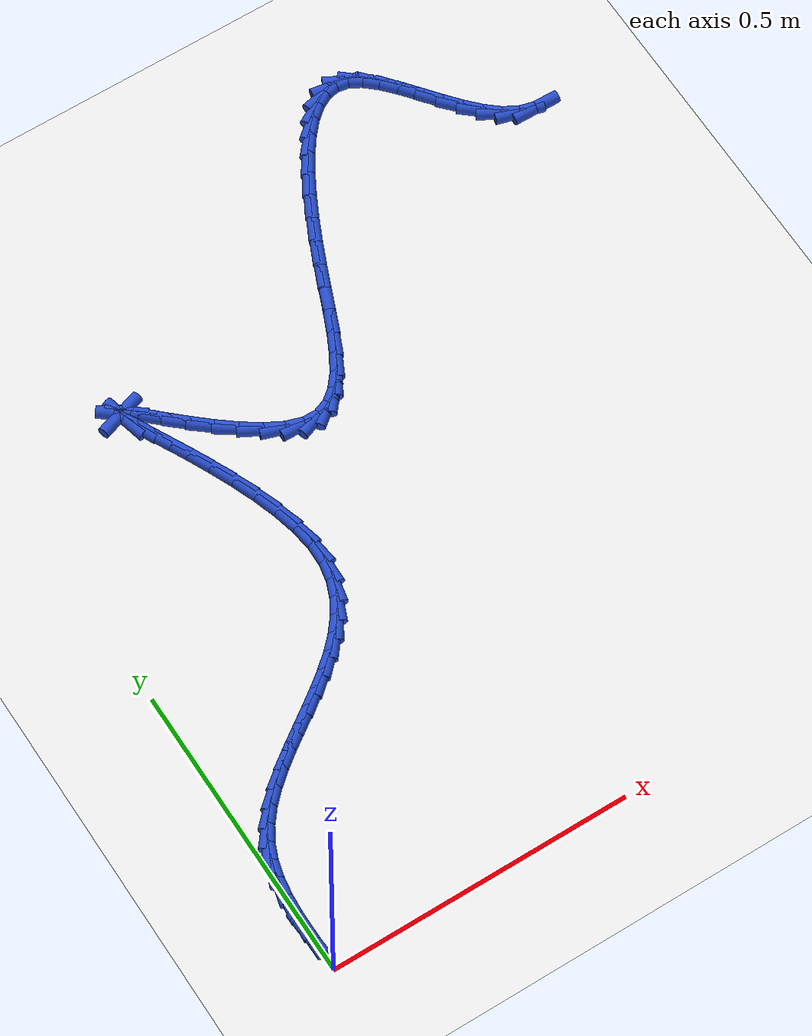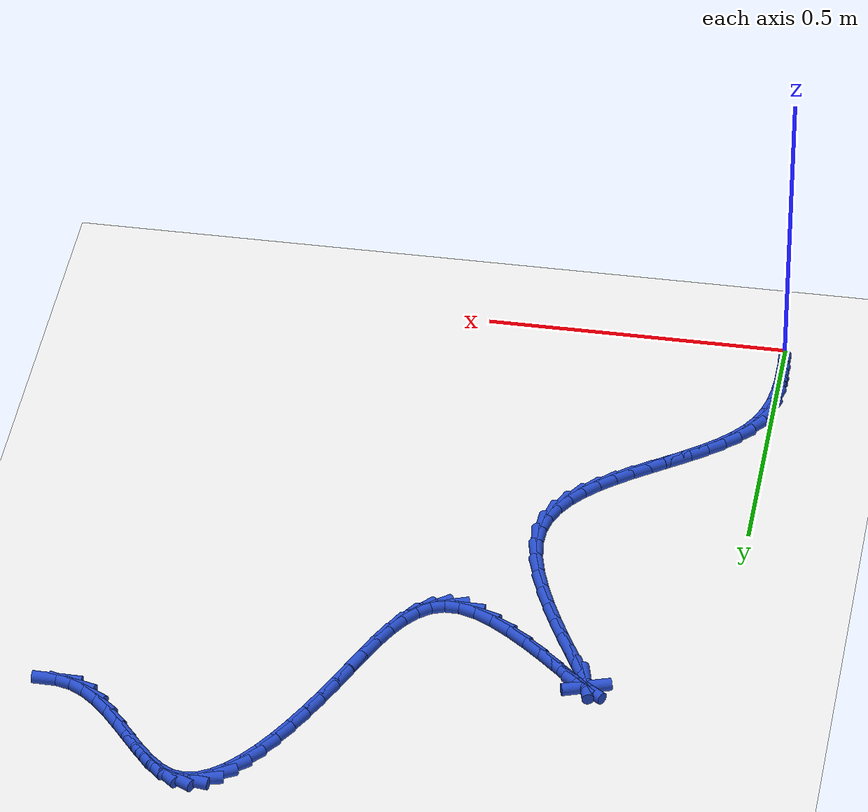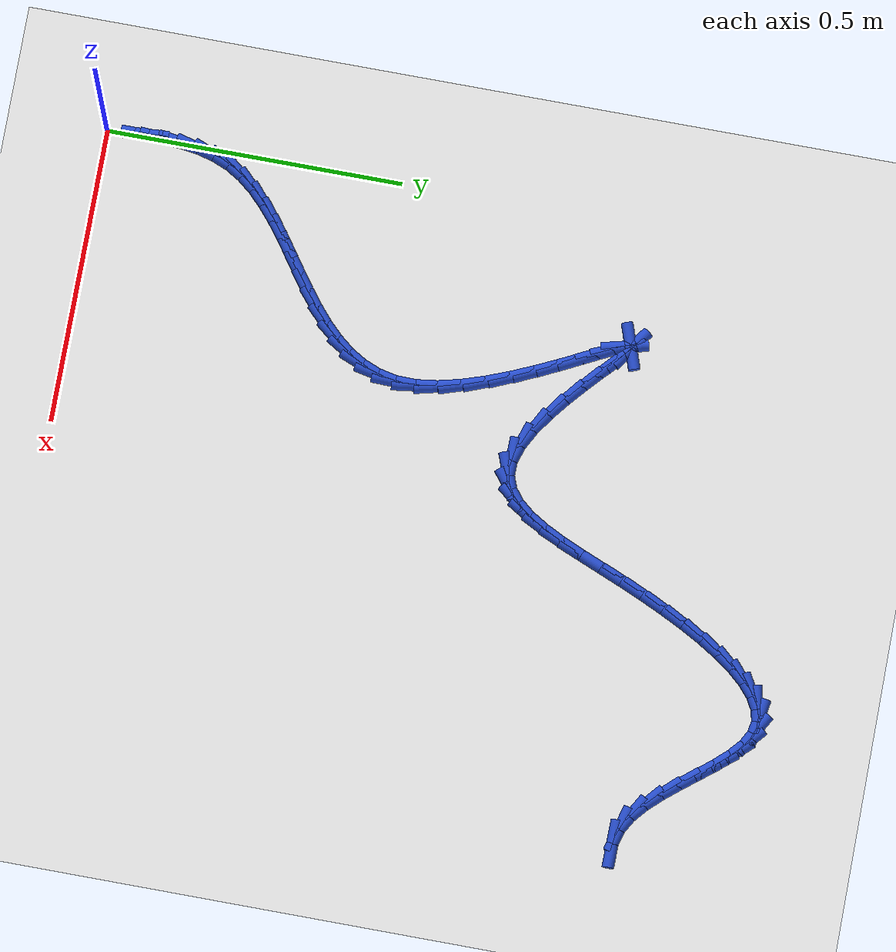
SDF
<sdf version="1.6">
 <world name="default">
  <model name="ground_plane">
   <static>1</static>
   <link name="link">
    <collision name="collision">
     <geometry><plane><normal>0 0 1</normal><size>100 100</size></plane></geometry>
     <surface><friction><ode><mu>100</mu><mu2>50</mu2></ode></friction></surface>
    </collision>
    <visual name="visual">
     <cast_shadows>0</cast_shadows>
     <geometry><plane><normal>0 0 1</normal><size>100 100</size></plane></geometry>
     <material>
      <script><uri>file://media/materials/scripts/gazebo.material</uri><name>Gazebo/WhiteGlow</name></script>
     </material>
    </visual>
   </link>
  </model>
  <model name="line">
   <link name="link_2">
    <pose>-0.0027959164126874657 0.06351579644415624 0.01 0 1.57 1.5668645503999694</pose>
    <collision name="collision">
     <geometry><cylinder><radius>0.01</radius><length>0.08</length></cylinder></geometry>
    </collision>
    <visual name="visual">
     <material>
      <script><name>Gazebo/Blue</name><uri>file://media/materials/scripts/gazebo.material</uri></script>
     </material>
     <geometry><cylinder><radius>0.01</radius><length>0.08</length></cylinder></geometry>
    </visual>
   </link>
   <link name="link_3">
    <pose>-0.0026716082320646997 0.09513192299397714 0.01 0 1.57 1.5087119891368779</pose>
    <collision name="collision">
     <geometry><cylinder><radius>0.01</radius><length>0.08</length></cylinder></geometry>
    </collision>
    <visual name="visual">
     <material>
      <script><name>Gazebo/Blue</name><uri>file://media/materials/scripts/gazebo.material</uri></script>
     </material>
     <geometry><cylinder><radius>0.01</radius><length>0.08</length></cylinder></geometry>
    </visual>
   </link>
   <link name="link_4">
    <pose>-0.0007434329826080588 0.12614936352640913 0.01 0 1.57 1.4278460036132272</pose>
    <collision name="collision">
     <geometry><cylinder><radius>0.01</radius><length>0.08</length></cylinder></geometry>
    </collision>
    <visual name="visual">
     <material>
      <script><name>Gazebo/Blue</name><uri>file://media/materials/scripts/gazebo.material</uri></script>
     </material>
     <geometry><cylinder><radius>0.01</radius><length>0.08</length></cylinder></geometry>
    </visual>
   </link>
   <link name="link_5">
    <pose>0.003580376443824612 0.1561899893645388 0.01 0 1.57 1.3212364394583436</pose>
    <collision name="collision">
     <geometry><cylinder><radius>0.01</radius><length>0.08</length></cylinder></geometry>
    </collision>
    <visual name="visual">
     <material>
      <script><name>Gazebo/Blue</name><uri>file://media/materials/scripts/gazebo.material</uri></script>
     </material>
     <geometry><cylinder><radius>0.01</radius><length>0.08</length></cylinder></geometry>
    </visual>
   </link>
   <link name="link_6">
    <pose>0.010891587155375467 0.18487567183145304 0.01 0 1.57 1.1867978124770695</pose>
    <collision name="collision">
     <geometry><cylinder><radius>0.01</radius><length>0.08</length></cylinder></geometry>
    </collision>
    <visual name="visual">
     <material>
      <script><name>Gazebo/Blue</name><uri>file://media/materials/scripts/gazebo.material</uri></script>
     </material>
     <geometry><cylinder><radius>0.01</radius><length>0.08</length></cylinder></geometry>
    </visual>
   </link>
   <link name="link_7">
    <pose>0.021781966260186664 0.21182828225023886 0.01 0 1.57 1.031378172145254</pose>
    <collision name="collision">
     <geometry><cylinder><radius>0.01</radius><length>0.08</length></cylinder></geometry>
    </collision>
    <visual name="visual">
     <material>
      <script><name>Gazebo/Blue</name><uri>file://media/materials/scripts/gazebo.material</uri></script>
     </material>
     <geometry><cylinder><radius>0.01</radius><length>0.08</length></cylinder></geometry>
    </visual>
   </link>
   <link name="link_8">
    <pose>0.03670214508740581 0.23675178229962057 0.01 0 1.57 0.8927171543347373</pose>
    <collision name="collision">
     <geometry><cylinder><radius>0.01</radius><length>0.08</length></cylinder></geometry>
    </collision>
    <visual name="visual">
     <material>
      <script><name>Gazebo/Blue</name><uri>file://media/materials/scripts/gazebo.material</uri></script>
     </material>
     <geometry><cylinder><radius>0.01</radius><length>0.08</length></cylinder></geometry>
    </visual>
   </link>
   <link name="link_9">
    <pose>0.055287042813328746 0.25982458529066454 0.01 0 1.57 0.784898827575356</pose>
    <collision name="collision">
     <geometry><cylinder><radius>0.01</radius><length>0.08</length></cylinder></geometry>
    </collision>
    <visual name="visual">
     <material>
      <script><name>Gazebo/Blue</name><uri>file://media/materials/scripts/gazebo.material</uri></script>
     </material>
     <geometry><cylinder><radius>0.01</radius><length>0.08</length></cylinder></geometry>
    </visual>
   </link>
   <link name="link_10">
    <pose>0.07687918365320512 0.28139517343199005 0.01 0 1.57 0.7061109310032161</pose>
    <collision name="collision">
     <geometry><cylinder><radius>0.01</radius><length>0.08</length></cylinder></geometry>
    </collision>
    <visual name="visual">
     <material>
      <script><name>Gazebo/Blue</name><uri>file://media/materials/scripts/gazebo.material</uri></script>
     </material>
     <geometry><cylinder><radius>0.01</radius><length>0.08</length></cylinder></geometry>
    </visual>
   </link>
   <link name="link_11">
    <pose>0.10082071693396542 0.301812246982634 0.01 0 1.57 0.6531049567065565</pose>
    <collision name="collision">
     <geometry><cylinder><radius>0.01</radius><length>0.08</length></cylinder></geometry>
    </collision>
    <visual name="visual">
     <material>
      <script><name>Gazebo/Blue</name><uri>file://media/materials/scripts/gazebo.material</uri></script>
     </material>
     <geometry><cylinder><radius>0.01</radius><length>0.08</length></cylinder></geometry>
    </visual>
   </link>
   <link name="link_12">
    <pose>0.1264537919825401 0.3214245062016331 0.01 0 1.57 0.6229373550466749</pose>
    <collision name="collision">
     <geometry><cylinder><radius>0.01</radius><length>0.08</length></cylinder></geometry>
    </collision>
    <visual name="visual">
     <material>
      <script><name>Gazebo/Blue</name><uri>file://media/materials/scripts/gazebo.material</uri></script>
     </material>
     <geometry><cylinder><radius>0.01</radius><length>0.08</length></cylinder></geometry>
    </visual>
   </link>
   <link name="link_13">
    <pose>0.1531205581258596 0.34058065134802373 0.01 0 1.57 0.613670889038933</pose>
    <collision name="collision">
     <geometry><cylinder><radius>0.01</radius><length>0.08</length></cylinder></geometry>
    </collision>
    <visual name="visual">
     <material>
      <script><name>Gazebo/Blue</name><uri>file://media/materials/scripts/gazebo.material</uri></script>
     </material>
     <geometry><cylinder><radius>0.01</radius><length>0.08</length></cylinder></geometry>
    </visual>
   </link>
   <link name="link_14">
    <pose>0.1801631646908543 0.35962938268084266 0.01 0 1.57 0.6245738218739101</pose>
    <collision name="collision">
     <geometry><cylinder><radius>0.01</radius><length>0.08</length></cylinder></geometry>
    </collision>
    <visual name="visual">
     <material>
      <script><name>Gazebo/Blue</name><uri>file://media/materials/scripts/gazebo.material</uri></script>
     </material>
     <geometry><cylinder><radius>0.01</radius><length>0.08</length></cylinder></geometry>
    </visual>
   </link>
   <link name="link_15">
    <pose>0.20692376100445467 0.37891940045912637 0.01 0 1.57 0.6561310193265922</pose>
    <collision name="collision">
     <geometry><cylinder><radius>0.01</radius><length>0.08</length></cylinder></geometry>
    </collision>
    <visual name="visual">
     <material>
      <script><name>Gazebo/Blue</name><uri>file://media/materials/scripts/gazebo.material</uri></script>
     </material>
     <geometry><cylinder><radius>0.01</radius><length>0.08</length></cylinder></geometry>
    </visual>
   </link>
   <link name="link_16">
    <pose>0.23274449639359127 0.3987994049419118 0.01 0 1.57 0.7099598297764018</pose>
    <collision name="collision">
     <geometry><cylinder><radius>0.01</radius><length>0.08</length></cylinder></geometry>
    </collision>
    <visual name="visual">
     <material>
      <script><name>Gazebo/Blue</name><uri>file://media/materials/scripts/gazebo.material</uri></script>
     </material>
     <geometry><cylinder><radius>0.01</radius><length>0.08</length></cylinder></geometry>
    </visual>
   </link>
   <link name="link_17">
    <pose>0.25696752018519436 0.4196180963882353 0.01 0 1.57 0.788543286077477</pose>
    <collision name="collision">
     <geometry><cylinder><radius>0.01</radius><length>0.08</length></cylinder></geometry>
    </collision>
    <visual name="visual">
     <material>
      <script><name>Gazebo/Blue</name><uri>file://media/materials/scripts/gazebo.material</uri></script>
     </material>
     <geometry><cylinder><radius>0.01</radius><length>0.08</length></cylinder></geometry>
    </visual>
   </link>
   <link name="link_18">
    <pose>0.27893498170619446 0.44172417505713363 0.01 0 1.57 0.8945082515153614</pose>
    <collision name="collision">
     <geometry><cylinder><radius>0.01</radius><length>0.08</length></cylinder></geometry>
    </collision>
    <visual name="visual">
     <material>
      <script><name>Gazebo/Blue</name><uri>file://media/materials/scripts/gazebo.material</uri></script>
     </material>
     <geometry><cylinder><radius>0.01</radius><length>0.08</length></cylinder></geometry>
    </visual>
   </link>
   <link name="link_19">
    <pose>0.297989030283522 0.46546634120764335 0.01 0 1.57 1.029045670293951</pose>
    <collision name="collision">
     <geometry><cylinder><radius>0.01</radius><length>0.08</length></cylinder></geometry>
    </collision>
    <visual name="visual">
     <material>
      <script><name>Gazebo/Blue</name><uri>file://media/materials/scripts/gazebo.material</uri></script>
     </material>
     <geometry><cylinder><radius>0.01</radius><length>0.08</length></cylinder></geometry>
    </visual>
   </link>
   <link name="link_20">
    <pose>0.3134718152441075 0.49119329509880116 0.01 0 1.57 1.189384170315574</pose>
    <collision name="collision">
     <geometry><cylinder><radius>0.01</radius><length>0.08</length></cylinder></geometry>
    </collision>
    <visual name="visual">
     <material>
      <script><name>Gazebo/Blue</name><uri>file://media/materials/scripts/gazebo.material</uri></script>
     </material>
     <geometry><cylinder><radius>0.01</radius><length>0.08</length></cylinder></geometry>
    </visual>
   </link>
   <link name="link_21">
    <pose>0.3247254859148814 0.5192537369896437 0.01 0 1.57 1.3665861587407233</pose>
    <collision name="collision">
     <geometry><cylinder><radius>0.01</radius><length>0.08</length></cylinder></geometry>
    </collision>
    <visual name="visual">
     <material>
      <script><name>Gazebo/Blue</name><uri>file://media/materials/scripts/gazebo.material</uri></script>
     </material>
     <geometry><cylinder><radius>0.01</radius><length>0.08</length></cylinder></geometry>
    </visual>
   </link>
   <link name="link_22">
    <pose>0.3310921916227739 0.5499963671392075 0.01 0 1.57 1.5462722711945407</pose>
    <collision name="collision">
     <geometry><cylinder><radius>0.01</radius><length>0.08</length></cylinder></geometry>
    </collision>
    <visual name="visual">
     <material>
      <script><name>Gazebo/Blue</name><uri>file://media/materials/scripts/gazebo.material</uri></script>
     </material>
     <geometry><cylinder><radius>0.01</radius><length>0.08</length></cylinder></geometry>
    </visual>
   </link>
   <link name="link_23">
    <pose>0.3319204962589454 0.5837647856849958 0.01 0 1.57 -1.4412416503928223</pose>
    <collision name="collision">
     <geometry><cylinder><radius>0.01</radius><length>0.08</length></cylinder></geometry>
    </collision>
    <visual name="visual">
     <material>
      <script><name>Gazebo/Blue</name><uri>file://media/materials/scripts/gazebo.material</uri></script>
     </material>
     <geometry><cylinder><radius>0.01</radius><length>0.08</length></cylinder></geometry>
    </visual>
   </link>
   <link name="link_24">
    <pose>0.3271424619114956 0.6204386623068459 0.01 0 1.57 -1.3318536267235894</pose>
    <collision name="collision">
     <geometry><cylinder><radius>0.01</radius><length>0.08</length></cylinder></geometry>
    </collision>
    <visual name="visual">
     <material>
      <script><name>Gazebo/Blue</name><uri>file://media/materials/scripts/gazebo.material</uri></script>
     </material>
     <geometry><cylinder><radius>0.01</radius><length>0.08</length></cylinder></geometry>
    </visual>
   </link>
   <link name="link_25">
    <pose>0.31773221903037974 0.6590691341294445 0.01 0 1.57 -1.2541452055621358</pose>
    <collision name="collision">
     <geometry><cylinder><radius>0.01</radius><length>0.08</length></cylinder></geometry>
    </collision>
    <visual name="visual">
     <material>
      <script><name>Gazebo/Blue</name><uri>file://media/materials/scripts/gazebo.material</uri></script>
     </material>
     <geometry><cylinder><radius>0.01</radius><length>0.08</length></cylinder></geometry>
    </visual>
   </link>
   <link name="link_26">
    <pose>0.30477181142227305 0.6986215380243946 0.01 0 1.57 -1.1979050699701133</pose>
    <collision name="collision">
     <geometry><cylinder><radius>0.01</radius><length>0.08</length></cylinder></geometry>
    </collision>
    <visual name="visual">
     <material>
      <script><name>Gazebo/Blue</name><uri>file://media/materials/scripts/gazebo.material</uri></script>
     </material>
     <geometry><cylinder><radius>0.01</radius><length>0.08</length></cylinder></geometry>
    </visual>
   </link>
   <link name="link_27">
    <pose>0.28934328289385025 0.7380612108633 0.01 0 1.57 -1.1570335195105463</pose>
    <collision name="collision">
     <geometry><cylinder><radius>0.01</radius><length>0.08</length></cylinder></geometry>
    </collision>
    <visual name="visual">
     <material>
      <script><name>Gazebo/Blue</name><uri>file://media/materials/scripts/gazebo.material</uri></script>
     </material>
     <geometry><cylinder><radius>0.01</radius><length>0.08</length></cylinder></geometry>
    </visual>
   </link>
   <link name="link_28">
    <pose>0.27252867725178637 0.776353489517764 0.01 0 1.57 -1.1281100830862631</pose>
    <collision name="collision">
     <geometry><cylinder><radius>0.01</radius><length>0.08</length></cylinder></geometry>
    </collision>
    <visual name="visual">
     <material>
      <script><name>Gazebo/Blue</name><uri>file://media/materials/scripts/gazebo.material</uri></script>
     </material>
     <geometry><cylinder><radius>0.01</radius><length>0.08</length></cylinder></geometry>
    </visual>
   </link>
   <link name="link_29">
    <pose>0.25541003830275666 0.8124637108593896 0.01 0 1.57 -1.1097330311195828</pose>
    <collision name="collision">
     <geometry><cylinder><radius>0.01</radius><length>0.08</length></cylinder></geometry>
    </collision>
    <visual name="visual">
     <material>
      <script><name>Gazebo/Blue</name><uri>file://media/materials/scripts/gazebo.material</uri></script>
     </material>
     <geometry><cylinder><radius>0.01</radius><length>0.08</length></cylinder></geometry>
    </visual>
   </link>
   <link name="link_30">
    <pose>0.2390694098534361 0.8453572117597803 0.01 0 1.57 -1.102703240145169</pose>
    <collision name="collision">
     <geometry><cylinder><radius>0.01</radius><length>0.08</length></cylinder></geometry>
    </collision>
    <visual name="visual">
     <material>
      <script><name>Gazebo/Blue</name><uri>file://media/materials/scripts/gazebo.material</uri></script>
     </material>
     <geometry><cylinder><radius>0.01</radius><length>0.08</length></cylinder></geometry>
    </visual>
   </link>
   <link name="link_31">
    <pose>0.2245888357104996 0.8739993290905391 0.01 0 1.57 -1.1119403655011126</pose>
    <collision name="collision">
     <geometry><cylinder><radius>0.01</radius><length>0.08</length></cylinder></geometry>
    </collision>
    <visual name="visual">
     <material>
      <script><name>Gazebo/Blue</name><uri>file://media/materials/scripts/gazebo.material</uri></script>
     </material>
     <geometry><cylinder><radius>0.01</radius><length>0.08</length></cylinder></geometry>
    </visual>
   </link>
   <link name="link_32">
    <pose>0.2130503596806222 0.89735539972327 0.01 0 1.57 -1.1553664526700589</pose>
    <collision name="collision">
     <geometry><cylinder><radius>0.01</radius><length>0.08</length></cylinder></geometry>
    </collision>
    <visual name="visual">
     <material>
      <script><name>Gazebo/Blue</name><uri>file://media/materials/scripts/gazebo.material</uri></script>
     </material>
     <geometry><cylinder><radius>0.01</radius><length>0.08</length></cylinder></geometry>
    </visual>
   </link>
   <link name="link_33">
    <pose>0.2055360255704789 0.914390760529576 0.01 0 1.57 -1.3269700216863092</pose>
    <collision name="collision">
     <geometry><cylinder><radius>0.01</radius><length>0.08</length></cylinder></geometry>
    </collision>
    <visual name="visual">
     <material>
      <script><name>Gazebo/Blue</name><uri>file://media/materials/scripts/gazebo.material</uri></script>
     </material>
     <geometry><cylinder><radius>0.01</radius><length>0.08</length></cylinder></geometry>
    </visual>
   </link>
   <link name="link_34">
    <pose>0.20312787718674483 0.9240707483810602 0.01 0 1.57 0.32885833397499126</pose>
    <collision name="collision">
     <geometry><cylinder><radius>0.01</radius><length>0.08</length></cylinder></geometry>
    </collision>
    <visual name="visual">
     <material>
      <script><name>Gazebo/Blue</name><uri>file://media/materials/scripts/gazebo.material</uri></script>
     </material>
     <geometry><cylinder><radius>0.01</radius><length>0.08</length></cylinder></geometry>
    </visual>
   </link>
   <link name="link_35">
    <pose>0.20690795833609488 0.9253607001493258 0.01 0 1.57 -0.6199399838525371</pose>
    <collision name="collision">
     <geometry><cylinder><radius>0.01</radius><length>0.08</length></cylinder></geometry>
    </collision>
    <visual name="visual">
     <material>
      <script><name>Gazebo/Blue</name><uri>file://media/materials/scripts/gazebo.material</uri></script>
     </material>
     <geometry><cylinder><radius>0.01</radius><length>0.08</length></cylinder></geometry>
    </visual>
   </link>
   <link name="link_36">
    <pose>0.21759446600557827 0.917732474276856 0.01 0 1.57 -0.7283895927231969</pose>
    <collision name="collision">
     <geometry><cylinder><radius>0.01</radius><length>0.08</length></cylinder></geometry>
    </collision>
    <visual name="visual">
     <material>
      <script><name>Gazebo/Blue</name><uri>file://media/materials/scripts/gazebo.material</uri></script>
     </material>
     <geometry><cylinder><radius>0.01</radius><length>0.08</length></cylinder></geometry>
    </visual>
   </link>
   <link name="link_37">
    <pose>0.23442467154054775 0.9027195681759547 0.01 0 1.57 -0.7499691526827266</pose>
    <collision name="collision">
     <geometry><cylinder><radius>0.01</radius><length>0.08</length></cylinder></geometry>
    </collision>
    <visual name="visual">
     <material>
      <script><name>Gazebo/Blue</name><uri>file://media/materials/scripts/gazebo.material</uri></script>
     </material>
     <geometry><cylinder><radius>0.01</radius><length>0.08</length></cylinder></geometry>
    </visual>
   </link>
   <link name="link_38">
    <pose>0.25625911865028056 0.8823799325830343 0.01 0 1.57 -0.7430200246903909</pose>
    <collision name="collision">
     <geometry><cylinder><radius>0.01</radius><length>0.08</length></cylinder></geometry>
    </collision>
    <visual name="visual">
     <material>
      <script><name>Gazebo/Blue</name><uri>file://media/materials/scripts/gazebo.material</uri></script>
     </material>
     <geometry><cylinder><radius>0.01</radius><length>0.08</length></cylinder></geometry>
    </visual>
   </link>
   <link name="link_39">
    <pose>0.2819583509718768 0.8587715183349862 0.01 0 1.57 -0.7177879676649651</pose>
    <collision name="collision">
     <geometry><cylinder><radius>0.01</radius><length>0.08</length></cylinder></geometry>
    </collision>
    <visual name="visual">
     <material>
      <script><name>Gazebo/Blue</name><uri>file://media/materials/scripts/gazebo.material</uri></script>
     </material>
     <geometry><cylinder><radius>0.01</radius><length>0.08</length></cylinder></geometry>
    </visual>
   </link>
   <link name="link_40">
    <pose>0.31038291214243646 0.8339522762687029 0.01 0 1.57 -0.6740044256709823</pose>
    <collision name="collision">
     <geometry><cylinder><radius>0.01</radius><length>0.08</length></cylinder></geometry>
    </collision>
    <visual name="visual">
     <material>
      <script><name>Gazebo/Blue</name><uri>file://media/materials/scripts/gazebo.material</uri></script>
     </material>
     <geometry><cylinder><radius>0.01</radius><length>0.08</length></cylinder></geometry>
    </visual>
   </link>
   <link name="link_41">
    <pose>0.3403933457990593 0.8099801572210763 0.01 0 1.57 -0.6051346839254056</pose>
    <collision name="collision">
     <geometry><cylinder><radius>0.01</radius><length>0.08</length></cylinder></geometry>
    </collision>
    <visual name="visual">
     <material>
      <script><name>Gazebo/Blue</name><uri>file://media/materials/scripts/gazebo.material</uri></script>
     </material>
     <geometry><cylinder><radius>0.01</radius><length>0.08</length></cylinder></geometry>
    </visual>
   </link>
   <link name="link_42">
    <pose>0.3708501955788452 0.7889131120289982 0.01 0 1.57 -0.49595394357340283</pose>
    <collision name="collision">
     <geometry><cylinder><radius>0.01</radius><length>0.08</length></cylinder></geometry>
    </collision>
    <visual name="visual">
     <material>
      <script><name>Gazebo/Blue</name><uri>file://media/materials/scripts/gazebo.material</uri></script>
     </material>
     <geometry><cylinder><radius>0.01</radius><length>0.08</length></cylinder></geometry>
    </visual>
   </link>
   <link name="link_43">
    <pose>0.40061400511889383 0.7728090915293606 0.01 0 1.57 -0.3144057232918719</pose>
    <collision name="collision">
     <geometry><cylinder><radius>0.01</radius><length>0.08</length></cylinder></geometry>
    </collision>
    <visual name="visual">
     <material>
      <script><name>Gazebo/Blue</name><uri>file://media/materials/scripts/gazebo.material</uri></script>
     </material>
     <geometry><cylinder><radius>0.01</radius><length>0.08</length></cylinder></geometry>
    </visual>
   </link>
   <link name="link_44">
    <pose>0.4285453180563058 0.7637260465590554 0.01 0 1.57 -0.011703591210170897</pose>
    <collision name="collision">
     <geometry><cylinder><radius>0.01</radius><length>0.08</length></cylinder></geometry>
    </collision>
    <visual name="visual">
     <material>
      <script><name>Gazebo/Blue</name><uri>file://media/materials/scripts/gazebo.material</uri></script>
     </material>
     <geometry><cylinder><radius>0.01</radius><length>0.08</length></cylinder></geometry>
    </visual>
   </link>
   <link name="link_45">
    <pose>0.45365351735670106 0.7634321770407985 0.01 0 1.57 0.35485432812626344</pose>
    <collision name="collision">
     <geometry><cylinder><radius>0.01</radius><length>0.08</length></cylinder></geometry>
    </collision>
    <visual name="visual">
     <material>
      <script><name>Gazebo/Blue</name><uri>file://media/materials/scripts/gazebo.material</uri></script>
     </material>
     <geometry><cylinder><radius>0.01</radius><length>0.08</length></cylinder></geometry>
    </visual>
   </link>
   <link name="link_46">
    <pose>0.4759720614419376 0.7717020780982234 0.01 0 1.57 0.6678376235612845</pose>
    <collision name="collision">
     <geometry><cylinder><radius>0.01</radius><length>0.08</length></cylinder></geometry>
    </collision>
    <visual name="visual">
     <material>
      <script><name>Gazebo/Blue</name><uri>file://media/materials/scripts/gazebo.material</uri></script>
     </material>
     <geometry><cylinder><radius>0.01</radius><length>0.08</length></cylinder></geometry>
    </visual>
   </link>
   <link name="link_47">
    <pose>0.4959652842543108 0.7874715438661151 0.01 0 1.57 0.8859163377391943</pose>
    <collision name="collision">
     <geometry><cylinder><radius>0.01</radius><length>0.08</length></cylinder></geometry>
    </collision>
    <visual name="visual">
     <material>
      <script><name>Gazebo/Blue</name><uri>file://media/materials/scripts/gazebo.material</uri></script>
     </material>
     <geometry><cylinder><radius>0.01</radius><length>0.08</length></cylinder></geometry>
    </visual>
   </link>
   <link name="link_48">
    <pose>0.5140990174254307 0.8096734528731955 0.01 0 1.57 1.025066322846191</pose>
    <collision name="collision">
     <geometry><cylinder><radius>0.01</radius><length>0.08</length></cylinder></geometry>
    </collision>
    <visual name="visual">
     <material>
      <script><name>Gazebo/Blue</name><uri>file://media/materials/scripts/gazebo.material</uri></script>
     </material>
     <geometry><cylinder><radius>0.01</radius><length>0.08</length></cylinder></geometry>
    </visual>
   </link>
   <link name="link_49">
    <pose>0.530839092586908 0.8372406836481885 0.01 0 1.57 1.1101776761175524</pose>
    <collision name="collision">
     <geometry><cylinder><radius>0.01</radius><length>0.08</length></cylinder></geometry>
    </collision>
    <visual name="visual">
     <material>
      <script><name>Gazebo/Blue</name><uri>file://media/materials/scripts/gazebo.material</uri></script>
     </material>
     <geometry><cylinder><radius>0.01</radius><length>0.08</length></cylinder></geometry>
    </visual>
   </link>
   <link name="link_50">
    <pose>0.5466513413703532 0.8691061147198168 0.01 0 1.57 1.1584927687857978</pose>
    <collision name="collision">
     <geometry><cylinder><radius>0.01</radius><length>0.08</length></cylinder></geometry>
    </collision>
    <visual name="visual">
     <material>
      <script><name>Gazebo/Blue</name><uri>file://media/materials/scripts/gazebo.material</uri></script>
     </material>
     <geometry><cylinder><radius>0.01</radius><length>0.08</length></cylinder></geometry>
    </visual>
   </link>
   <link name="link_51">
    <pose>0.5620015954073766 0.9042026246168028 0.01 0 1.57 1.1799243712703809</pose>
    <collision name="collision">
     <geometry><cylinder><radius>0.01</radius><length>0.08</length></cylinder></geometry>
    </collision>
    <visual name="visual">
     <material>
      <script><name>Gazebo/Blue</name><uri>file://media/materials/scripts/gazebo.material</uri></script>
     </material>
     <geometry><cylinder><radius>0.01</radius><length>0.08</length></cylinder></geometry>
    </visual>
   </link>
   <link name="link_52">
    <pose>0.5773556863295888 0.9414630918678701 0.01 0 1.57 1.179538955681841</pose>
    <collision name="collision">
     <geometry><cylinder><radius>0.01</radius><length>0.08</length></cylinder></geometry>
    </collision>
    <visual name="visual">
     <material>
      <script><name>Gazebo/Blue</name><uri>file://media/materials/scripts/gazebo.material</uri></script>
     </material>
     <geometry><cylinder><radius>0.01</radius><length>0.08</length></cylinder></geometry>
    </visual>
   </link>
   <link name="link_53">
    <pose>0.5931791229010174 0.9798205668883077 0.01 0 1.57 1.1629228723960348</pose>
    <collision name="collision">
     <geometry><cylinder><radius>0.01</radius><length>0.08</length></cylinder></geometry>
    </collision>
    <visual name="visual">
     <material>
      <script><name>Gazebo/Blue</name><uri>file://media/materials/scripts/gazebo.material</uri></script>
     </material>
     <geometry><cylinder><radius>0.01</radius><length>0.08</length></cylinder></geometry>
    </visual>
   </link>
   <link name="link_54">
    <pose>0.6097985280993995 1.0182820393864562 0.01 0 1.57 1.1392877880767849</pose>
    <collision name="collision">
     <geometry><cylinder><radius>0.01</radius><length>0.08</length></cylinder></geometry>
    </collision>
    <visual name="visual">
     <material>
      <script><name>Gazebo/Blue</name><uri>file://media/materials/scripts/gazebo.material</uri></script>
     </material>
     <geometry><cylinder><radius>0.01</radius><length>0.08</length></cylinder></geometry>
    </visual>
   </link>
   <link name="link_55">
    <pose>0.6271856801082225 1.0560434094979347 0.01 0 1.57 1.108751322990685</pose>
    <collision name="collision">
     <geometry><cylinder><radius>0.01</radius><length>0.08</length></cylinder></geometry>
    </collision>
    <visual name="visual">
     <material>
      <script><name>Gazebo/Blue</name><uri>file://media/materials/scripts/gazebo.material</uri></script>
     </material>
     <geometry><cylinder><radius>0.01</radius><length>0.08</length></cylinder></geometry>
    </visual>
   </link>
   <link name="link_56">
    <pose>0.6452564989403701 1.0923303148409047 0.01 0 1.57 1.0690937379425778</pose>
    <collision name="collision">
     <geometry><cylinder><radius>0.01</radius><length>0.08</length></cylinder></geometry>
    </collision>
    <visual name="visual">
     <material>
      <script><name>Gazebo/Blue</name><uri>file://media/materials/scripts/gazebo.material</uri></script>
     </material>
     <geometry><cylinder><radius>0.01</radius><length>0.08</length></cylinder></geometry>
    </visual>
   </link>
   <link name="link_57">
    <pose>0.6639269046087257 1.126368393033529 0.01 0 1.57 1.016810114287824</pose>
    <collision name="collision">
     <geometry><cylinder><radius>0.01</radius><length>0.08</length></cylinder></geometry>
    </collision>
    <visual name="visual">
     <material>
      <script><name>Gazebo/Blue</name><uri>file://media/materials/scripts/gazebo.material</uri></script>
     </material>
     <geometry><cylinder><radius>0.01</radius><length>0.08</length></cylinder></geometry>
    </visual>
   </link>
   <link name="link_58">
    <pose>0.6831128171261732 1.1573832816939709 0.01 0 1.57 0.9462687745078787</pose>
    <collision name="collision">
     <geometry><cylinder><radius>0.01</radius><length>0.08</length></cylinder></geometry>
    </collision>
    <visual name="visual">
     <material>
      <script><name>Gazebo/Blue</name><uri>file://media/materials/scripts/gazebo.material</uri></script>
     </material>
     <geometry><cylinder><radius>0.01</radius><length>0.08</length></cylinder></geometry>
    </visual>
   </link>
   <link name="link_59">
    <pose>0.7027301565055963 1.184600618440393 0.01 0 1.57 0.8482285060347439</pose>
    <collision name="collision">
     <geometry><cylinder><radius>0.01</radius><length>0.08</length></cylinder></geometry>
    </collision>
    <visual name="visual">
     <material>
      <script><name>Gazebo/Blue</name><uri>file://media/materials/scripts/gazebo.material</uri></script>
     </material>
     <geometry><cylinder><radius>0.01</radius><length>0.08</length></cylinder></geometry>
    </visual>
   </link>
   <link name="link_60">
    <pose>0.7226948427598792 1.2072460408909587 0.01 0 1.57 0.707510914049224</pose>
    <collision name="collision">
     <geometry><cylinder><radius>0.01</radius><length>0.08</length></cylinder></geometry>
    </collision>
    <visual name="visual">
     <material>
      <script><name>Gazebo/Blue</name><uri>file://media/materials/scripts/gazebo.material</uri></script>
     </material>
     <geometry><cylinder><radius>0.01</radius><length>0.08</length></cylinder></geometry>
    </visual>
   </link>
   <link name="link_61">
    <pose>0.7429227959019049 1.22454518666383 0.01 0 1.57 0.5011328090953621</pose>
    <collision name="collision">
     <geometry><cylinder><radius>0.01</radius><length>0.08</length></cylinder></geometry>
    </collision>
    <visual name="visual">
     <material>
      <script><name>Gazebo/Blue</name><uri>file://media/materials/scripts/gazebo.material</uri></script>
     </material>
     <geometry><cylinder><radius>0.01</radius><length>0.08</length></cylinder></geometry>
    </visual>
   </link>
   <link name="link_62">
    <pose>0.7633299359445572 1.2357236933771698 0.01 0 1.57 0.20596580398660785</pose>
    <collision name="collision">
     <geometry><cylinder><radius>0.01</radius><length>0.08</length></cylinder></geometry>
    </collision>
    <visual name="visual">
     <material>
      <script><name>Gazebo/Blue</name><uri>file://media/materials/scripts/gazebo.material</uri></script>
     </material>
     <geometry><cylinder><radius>0.01</radius><length>0.08</length></cylinder></geometry>
    </visual>
   </link>
   <link name="link_63">
    <pose>0.7838321829007202 1.2400071986491408 0.01 0 1.57 -0.16358206487457394</pose>
    <collision name="collision">
     <geometry><cylinder><radius>0.01</radius><length>0.08</length></cylinder></geometry>
    </collision>
    <visual name="visual">
     <material>
      <script><name>Gazebo/Blue</name><uri>file://media/materials/scripts/gazebo.material</uri></script>
     </material>
     <geometry><cylinder><radius>0.01</radius><length>0.08</length></cylinder></geometry>
    </visual>
   </link>
   <link name="link_64">
    <pose>0.8043454567836357 1.2366213401025141 0.01 0 1.57 -0.5079232404879332</pose>
    <collision name="collision">
     <geometry><cylinder><radius>0.01</radius><length>0.08</length></cylinder></geometry>
    </collision>
    <visual name="visual">
     <material>
      <script><name>Gazebo/Blue</name><uri>file://media/materials/scripts/gazebo.material</uri></script>
     </material>
     <geometry><cylinder><radius>0.01</radius><length>0.08</length></cylinder></geometry>
    </visual>
   </link>
   <link name="link_65">
    <pose>0.8248193283177215 1.2252248597661966 0.01 0 1.57 -0.720877954497764</pose>
    <collision name="collision">
     <geometry><cylinder><radius>0.01</radius><length>0.08</length></cylinder></geometry>
    </collision>
    <visual name="visual">
     <material>
      <script><name>Gazebo/Blue</name><uri>file://media/materials/scripts/gazebo.material</uri></script>
     </material>
     <geometry><cylinder><radius>0.01</radius><length>0.08</length></cylinder></geometry>
    </visual>
   </link>
   <link name="link_66">
    <pose>0.8453370839658196 1.2071974997150454 0.01 0 1.57 -0.8352760679725161</pose>
    <collision name="collision">
     <geometry><cylinder><radius>0.01</radius><length>0.08</length></cylinder></geometry>
    </collision>
    <visual name="visual">
     <material>
      <script><name>Gazebo/Blue</name><uri>file://media/materials/scripts/gazebo.material</uri></script>
     </material>
     <geometry><cylinder><radius>0.01</radius><length>0.08</length></cylinder></geometry>
    </visual>
   </link>
   <link name="link_67">
    <pose>0.8660152188084893 1.1843464164277295 0.01 0 1.57 -0.8899358517739383</pose>
    <collision name="collision">
     <geometry><cylinder><radius>0.01</radius><length>0.08</length></cylinder></geometry>
    </collision>
    <visual name="visual">
     <material>
      <script><name>Gazebo/Blue</name><uri>file://media/materials/scripts/gazebo.material</uri></script>
     </material>
     <geometry><cylinder><radius>0.01</radius><length>0.08</length></cylinder></geometry>
    </visual>
   </link>
   <link name="link_68">
    <pose>0.8869702279262907 1.158478766382919 0.01 0 1.57 -0.9031499178217088</pose>
    <collision name="collision">
     <geometry><cylinder><radius>0.01</radius><length>0.08</length></cylinder></geometry>
    </collision>
    <visual name="visual">
     <material>
      <script><name>Gazebo/Blue</name><uri>file://media/materials/scripts/gazebo.material</uri></script>
     </material>
     <geometry><cylinder><radius>0.01</radius><length>0.08</length></cylinder></geometry>
    </visual>
   </link>
   <link name="link_69">
    <pose>0.9083186063997832 1.1314017060592825 0.01 0 1.57 -0.8807085247741376</pose>
    <collision name="collision">
     <geometry><cylinder><radius>0.01</radius><length>0.08</length></cylinder></geometry>
    </collision>
    <visual name="visual">
     <material>
      <script><name>Gazebo/Blue</name><uri>file://media/materials/scripts/gazebo.material</uri></script>
     </material>
     <geometry><cylinder><radius>0.01</radius><length>0.08</length></cylinder></geometry>
    </visual>
   </link>
   <link name="link_70">
    <pose>0.9301768493095259 1.1049223919354898 0.01 0 1.57 -0.8195310076250119</pose>
    <collision name="collision">
     <geometry><cylinder><radius>0.01</radius><length>0.08</length></cylinder></geometry>
    </collision>
    <visual name="visual">
     <material>
      <script><name>Gazebo/Blue</name><uri>file://media/materials/scripts/gazebo.material</uri></script>
     </material>
     <geometry><cylinder><radius>0.01</radius><length>0.08</length></cylinder></geometry>
    </visual>
   </link>
   <link name="link_71">
    <pose>0.9526614517360793 1.0808479804902096 0.01 0 1.57 -0.7074612074506617</pose>
    <collision name="collision">
     <geometry><cylinder><radius>0.01</radius><length>0.08</length></cylinder></geometry>
    </collision>
    <visual name="visual">
     <material>
      <script><name>Gazebo/Blue</name><uri>file://media/materials/scripts/gazebo.material</uri></script>
     </material>
     <geometry><cylinder><radius>0.01</radius><length>0.08</length></cylinder></geometry>
    </visual>
   </link>
   <link name="link_72">
    <pose>0.9758889087600028 1.060985628202112 0.01 0 1.57 -0.521711624458957</pose>
    <collision name="collision">
     <geometry><cylinder><radius>0.01</radius><length>0.08</length></cylinder></geometry>
    </collision>
    <visual name="visual">
     <material>
      <script><name>Gazebo/Blue</name><uri>file://media/materials/scripts/gazebo.material</uri></script>
     </material>
     <geometry><cylinder><radius>0.01</radius><length>0.08</length></cylinder></geometry>
    </visual>
   </link>
   <link name="link_73">
    <pose>0.9999755204251621 1.0471397573519516 0.01 0 1.57 -0.26423954809929434</pose>
    <collision name="collision">
     <geometry><cylinder><radius>0.01</radius><length>0.08</length></cylinder></geometry>
    </collision>
    <visual name="visual">
     <material>
      <script><name>Gazebo/Blue</name><uri>file://media/materials/scripts/gazebo.material</uri></script>
     </material>
     <geometry><cylinder><radius>0.01</radius><length>0.08</length></cylinder></geometry>
    </visual>
   </link>
   <link name="link_74">
    <pose>1.0249846818542405 1.0403731219608905 0.01 0 1.57 -0.014188423286037897</pose>
    <collision name="collision">
     <geometry><cylinder><radius>0.01</radius><length>0.08</length></cylinder></geometry>
    </collision>
    <visual name="visual">
     <material>
      <script><name>Gazebo/Blue</name><uri>file://media/materials/scripts/gazebo.material</uri></script>
     </material>
     <geometry><cylinder><radius>0.01</radius><length>0.08</length></cylinder></geometry>
    </visual>
   </link>
   <link name="link_292">
    <pose>-0.003799478221787005 0.06411756759257414 0.01 0 1.57 -1.5116075520230328</pose>
    <collision name="collision">
     <geometry><cylinder><radius>0.01</radius><length>0.08</length></cylinder></geometry>
    </collision>
    <visual name="visual">
     <material>
      <script><name>Gazebo/Blue</name><uri>file://media/materials/scripts/gazebo.material</uri></script>
     </material>
     <geometry><cylinder><radius>0.01</radius><length>0.08</length></cylinder></geometry>
    </visual>
   </link>
  </model>
 </world>
</sdf>
